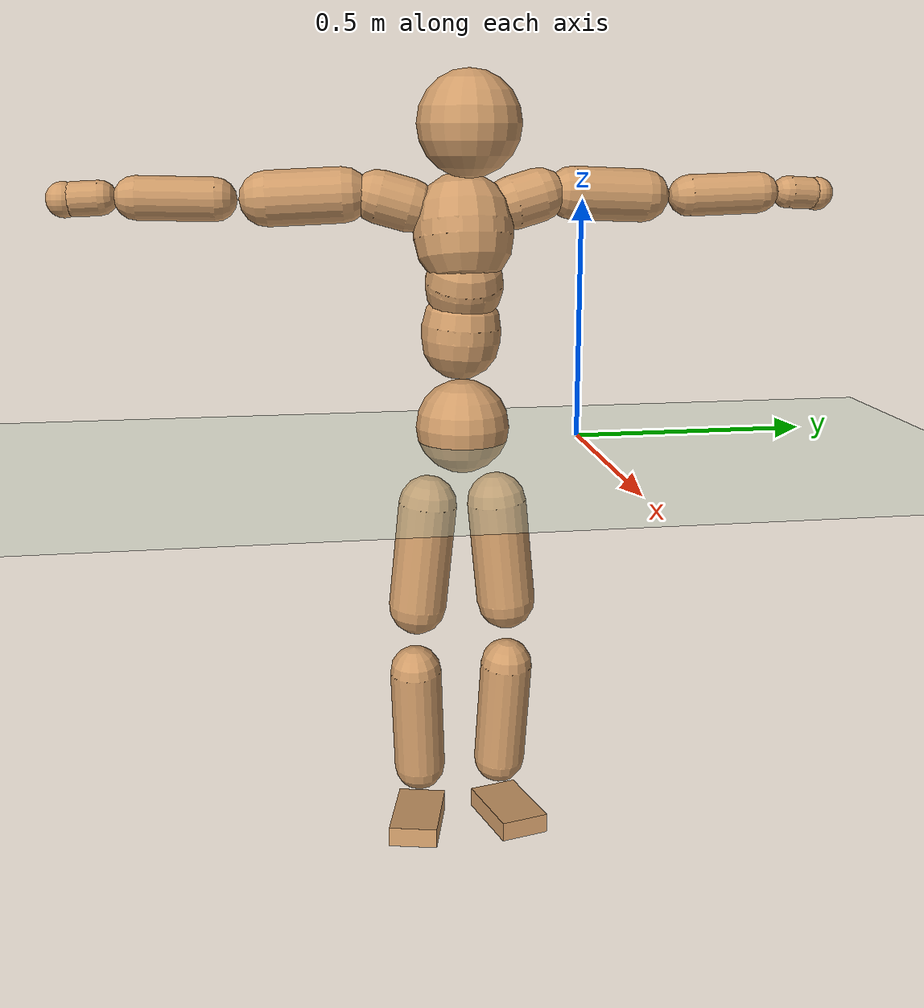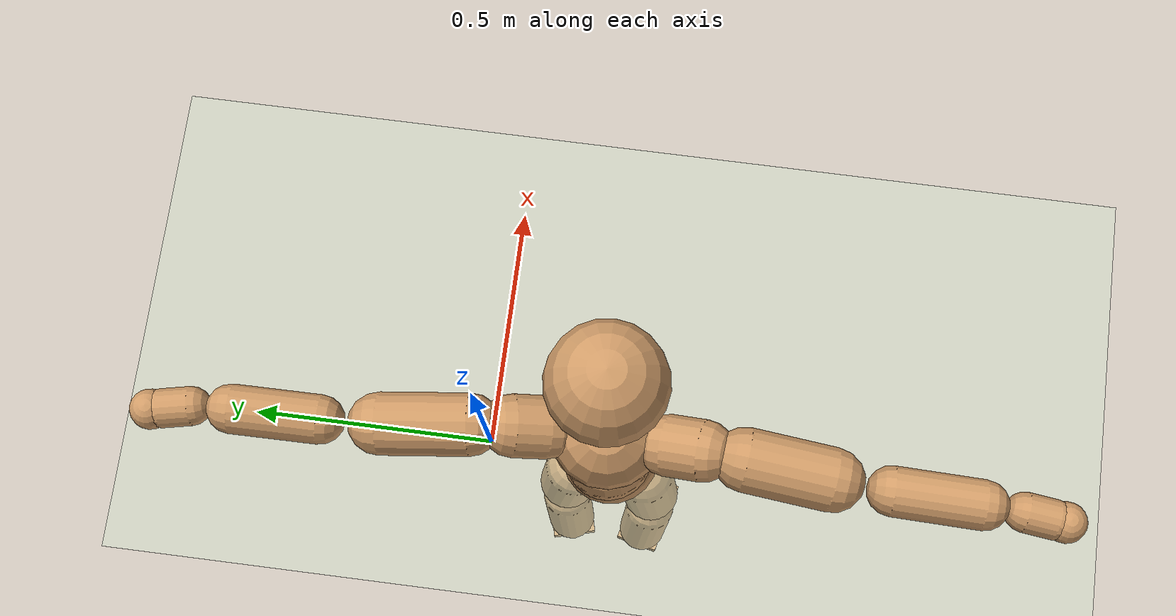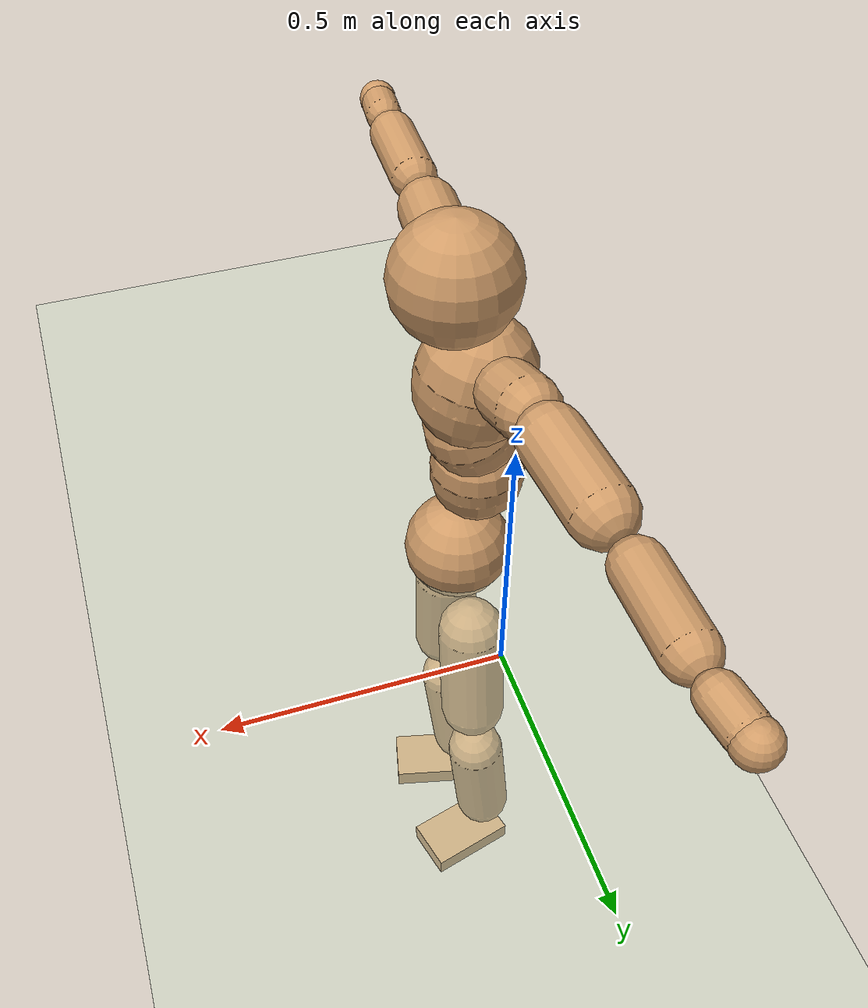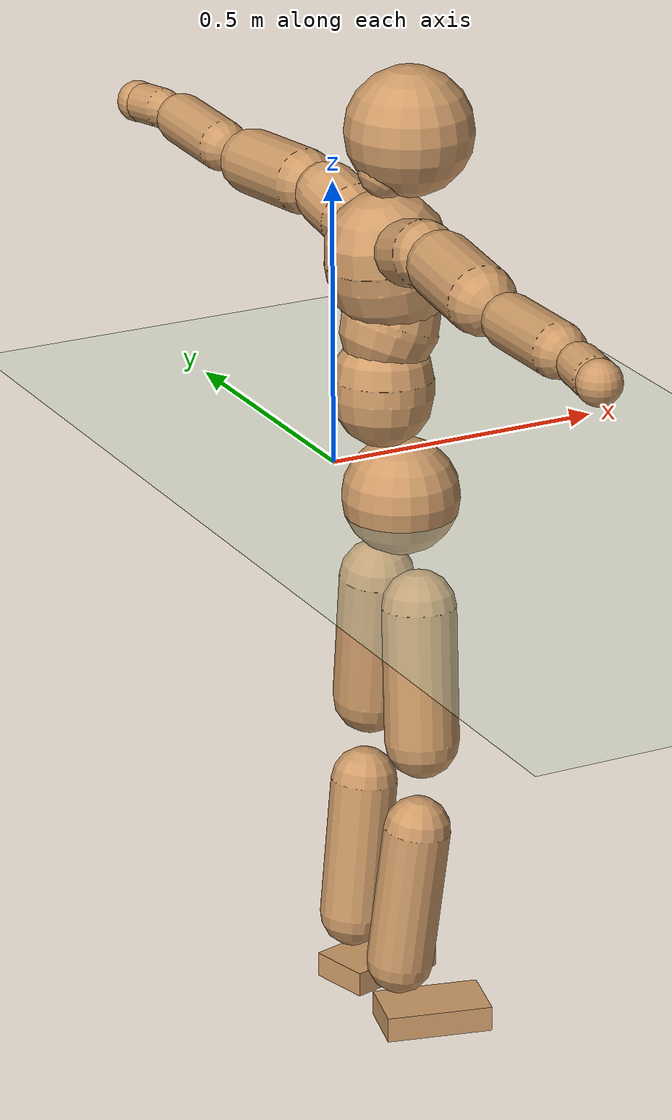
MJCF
<mujoco model="humanoid">
  <compiler coordinate="local"/>
  <default>
    <joint damping="0.0" armature="0.01" stiffness="0.0" limited="true"/>
    <geom conaffinity="1" condim="3" contype="7" margin="0.001" rgba="0.8 0.6 .4 1"/>
  </default>
  <asset>
    <texture type="skybox" builtin="gradient" rgb1=".4 .5 .6" rgb2="0 0 0" width="100" height="100"/>
    <texture builtin="flat" height="1278" mark="cross" markrgb="1 1 1" name="texgeom" random="0.01" rgb1="0.8 0.6 0.4" rgb2="0.8 0.6 0.4" type="cube" width="127"/>
    <texture builtin="checker" height="100" name="texplane" rgb1="0 0 0" rgb2="0.8 0.8 0.8" type="2d" width="100"/>
    <material name="MatPlane" reflectance="0.5" shininess="1" specular="1" texrepeat="60 60" texture="texplane"/>
    <material name="geom" texture="texgeom" texuniform="true"/>
  </asset>
  <worldbody>
    <light cutoff="100" diffuse="1 1 1" dir="-0 0 -1.3" directional="true" exponent="1" pos="0 0 1.3" specular=".1 .1 .1"/>
    <geom conaffinity="1" condim="3" name="floor" pos="0 0 0" rgba="0.8 0.9 0.8 1" size="100 100 .2" type="plane" material="MatPlane"/>
    <body name="Pelvis" pos="-0.003 -0.25 0.0282">
      <freejoint name="Pelvis"/>
      <geom type="sphere" contype="1" conaffinity="1" density="500" size="0.0997" pos="0.0000 0.0000 0.0000" name="Pelvis"/>
      <body name="L_Hip" pos="-0.0046 0.0684 -0.0957">
        <joint name="L_Hip_x" type="hinge" pos="0 0 0" axis="1 0 0" stiffness="800" damping="80" armature="0.02" range="-180.0000 180.0000"/>
        <joint name="L_Hip_y" type="hinge" pos="0 0 0" axis="0 1 0" stiffness="800" damping="80" armature="0.02" range="-180.0000 180.0000"/>
        <joint name="L_Hip_z" type="hinge" pos="0 0 0" axis="0 0 1" stiffness="800" damping="80" armature="0.02" range="-180.0000 180.0000"/>
        <geom type="capsule" contype="1" conaffinity="1" density="500" fromto="-0.0005 0.0074 -0.0760 -0.0020 0.0298 -0.3039" size="0.0638" name="L_Hip"/>
        <body name="L_Knee" pos="-0.0025 0.0372 -0.3798">
          <joint name="L_Knee_x" type="hinge" pos="0 0 0" axis="1 0 0" stiffness="800" damping="80" armature="0.02" range="-180.0000 180.0000"/>
          <joint name="L_Knee_y" type="hinge" pos="0 0 0" axis="0 1 0" stiffness="800" damping="80" armature="0.02" range="-180.0000 180.0000"/>
          <joint name="L_Knee_z" type="hinge" pos="0 0 0" axis="0 0 1" stiffness="800" damping="80" armature="0.02" range="-180.0000 180.0000"/>
          <geom type="capsule" contype="1" conaffinity="1" density="500" fromto="-0.0089 -0.0032 -0.0808 -0.0356 -0.0130 -0.3231" size="0.0572" name="L_Knee"/>
          <body name="L_Ankle" pos="-0.0445 -0.0162 -0.4039">
            <joint name="L_Ankle_x" type="hinge" pos="0 0 0" axis="1 0 0" stiffness="800" damping="80" armature="0.02" range="-180.0000 180.0000"/>
            <joint name="L_Ankle_y" type="hinge" pos="0 0 0" axis="0 1 0" stiffness="800" damping="80" armature="0.02" range="-180.0000 180.0000"/>
            <joint name="L_Ankle_z" type="hinge" pos="0 0 0" axis="0 0 1" stiffness="800" damping="80" armature="0.02" range="-180.0000 180.0000"/>
            <geom type="box" contype="1" conaffinity="1" density="500" pos="0.0625 0.0161 -0.0281" size="0.0891 0.0542 0.0215" quat="0.9921 0.0000 0.0000 0.1254" name="L_Ankle"/>
            <body name="L_Toe" pos="0.125 0.0321 -0.0561">
              <joint name="L_Toe_x" type="hinge" pos="0 0 0" axis="1 0 0" stiffness="500" damping="50" armature="0.02" range="-180.0000 180.0000"/>
              <joint name="L_Toe_y" type="hinge" pos="0 0 0" axis="0 1 0" stiffness="500" damping="50" armature="0.02" range="-180.0000 180.0000"/>
              <joint name="L_Toe_z" type="hinge" pos="0 0 0" axis="0 0 1" stiffness="500" damping="50" armature="0.02" range="-180.0000 180.0000"/>
              <geom type="box" contype="1" conaffinity="1" density="500" pos="0.0000 0.0000 0.0276" size="0.0011 0.0026 0.0011" quat="0.9914 0.0000 0.0000 0.1308" name="L_Toe"/>
            </body>
          </body>
        </body>
      </body>
      <body name="R_Hip" pos="-0.0035 -0.0673 -0.0942">
        <joint name="R_Hip_x" type="hinge" pos="0 0 0" axis="1 0 0" stiffness="800" damping="80" armature="0.02" range="-180.0000 180.0000"/>
        <joint name="R_Hip_y" type="hinge" pos="0 0 0" axis="0 1 0" stiffness="800" damping="80" armature="0.02" range="-180.0000 180.0000"/>
        <joint name="R_Hip_z" type="hinge" pos="0 0 0" axis="0 0 1" stiffness="800" damping="80" armature="0.02" range="-180.0000 180.0000"/>
        <geom type="capsule" contype="1" conaffinity="1" density="500" fromto="-0.0020 -0.0077 -0.0777 -0.0079 -0.0308 -0.3107" size="0.0627" name="R_Hip"/>
        <body name="R_Knee" pos="-0.0098 -0.0386 -0.3884">
          <joint name="R_Knee_x" type="hinge" pos="0 0 0" axis="1 0 0" stiffness="800" damping="80" armature="0.02" range="-180.0000 180.0000"/>
          <joint name="R_Knee_y" type="hinge" pos="0 0 0" axis="0 1 0" stiffness="800" damping="80" armature="0.02" range="-180.0000 180.0000"/>
          <joint name="R_Knee_z" type="hinge" pos="0 0 0" axis="0 0 1" stiffness="800" damping="80" armature="0.02" range="-180.0000 180.0000"/>
          <geom type="capsule" contype="1" conaffinity="1" density="500" fromto="-0.0088 0.0035 -0.0809 -0.0353 0.0141 -0.3237" size="0.057" name="R_Knee"/>
          <body name="R_Ankle" pos="-0.0442 0.0176 -0.4046">
            <joint name="R_Ankle_x" type="hinge" pos="0 0 0" axis="1 0 0" stiffness="800" damping="80" armature="0.02" range="-180.0000 180.0000"/>
            <joint name="R_Ankle_y" type="hinge" pos="0 0 0" axis="0 1 0" stiffness="800" damping="80" armature="0.02" range="-180.0000 180.0000"/>
            <joint name="R_Ankle_z" type="hinge" pos="0 0 0" axis="0 0 1" stiffness="800" damping="80" armature="0.02" range="-180.0000 180.0000"/>
            <geom type="box" contype="1" conaffinity="1" density="500" pos="0.0651 -0.0158 -0.0246" size="0.0911 0.0531 0.0219" quat="0.9929 0.0000 0.0000 -0.1186" name="R_Ankle"/>
            <body name="R_Toe" pos="0.1302 -0.0316 -0.0492">
              <joint name="R_Toe_x" type="hinge" pos="0 0 0" axis="1 0 0" stiffness="500" damping="50" armature="0.02" range="-180.0000 180.0000"/>
              <joint name="R_Toe_y" type="hinge" pos="0 0 0" axis="0 1 0" stiffness="500" damping="50" armature="0.02" range="-180.0000 180.0000"/>
              <joint name="R_Toe_z" type="hinge" pos="0 0 0" axis="0 0 1" stiffness="500" damping="50" armature="0.02" range="-180.0000 180.0000"/>
              <geom type="box" contype="1" conaffinity="1" density="500" pos="0.0000 0.0000 0.0250" size="0.0011 0.0026 0.0011" quat="0.9940 0.0000 0.0000 -0.1097" name="R_Toe"/>
            </body>
          </body>
        </body>
      </body>
      <body name="Torso" pos="-0.035 -0.0027 0.1192">
        <joint name="Torso_x" type="hinge" pos="0 0 0" axis="1 0 0" stiffness="1000" damping="100" armature="0.02" range="-180.0000 180.0000"/>
        <joint name="Torso_y" type="hinge" pos="0 0 0" axis="0 1 0" stiffness="1000" damping="100" armature="0.02" range="-180.0000 180.0000"/>
        <joint name="Torso_z" type="hinge" pos="0 0 0" axis="0 0 1" stiffness="1000" damping="100" armature="0.02" range="-180.0000 180.0000"/>
        <geom type="capsule" contype="1" conaffinity="1" density="500" fromto="0.0033 0.0053 0.0904 0.0022 0.0035 0.0603" size="0.0842" name="Torso"/>
        <body name="Spine" pos="0.0055 0.0088 0.1507">
          <joint name="Spine_x" type="hinge" pos="0 0 0" axis="1 0 0" stiffness="1000" damping="100" armature="0.02" range="-180.0000 180.0000"/>
          <joint name="Spine_y" type="hinge" pos="0 0 0" axis="0 1 0" stiffness="1000" damping="100" armature="0.02" range="-180.0000 180.0000"/>
          <joint name="Spine_z" type="hinge" pos="0 0 0" axis="0 0 1" stiffness="1000" damping="100" armature="0.02" range="-180.0000 180.0000"/>
          <geom type="capsule" contype="1" conaffinity="1" density="500" fromto="0.0143 0.0002 0.0363 0.0096 0.0001 0.0242" size="0.0824" name="Spine"/>
          <body name="Chest" pos="0.0239 0.0003 0.0605">
            <joint name="Chest_x" type="hinge" pos="0 0 0" axis="1 0 0" stiffness="1000" damping="100" armature="0.02" range="-180.0000 180.0000"/>
            <joint name="Chest_y" type="hinge" pos="0 0 0" axis="0 1 0" stiffness="1000" damping="100" armature="0.02" range="-180.0000 180.0000"/>
            <joint name="Chest_z" type="hinge" pos="0 0 0" axis="0 0 1" stiffness="1000" damping="100" armature="0.02" range="-180.0000 180.0000"/>
            <geom type="capsule" contype="1" conaffinity="1" density="500" fromto="-0.0190 -0.0015 0.0945 -0.0126 -0.0010 0.0630" size="0.1042" name="Chest"/>
            <body name="Neck" pos="-0.0302 -0.003 0.222">
              <joint name="Neck_x" type="hinge" pos="0 0 0" axis="1 0 0" stiffness="500" damping="50" armature="0.02" range="-180.0000 180.0000"/>
              <joint name="Neck_y" type="hinge" pos="0 0 0" axis="0 1 0" stiffness="500" damping="50" armature="0.02" range="-180.0000 180.0000"/>
              <joint name="Neck_z" type="hinge" pos="0 0 0" axis="0 0 1" stiffness="500" damping="50" armature="0.02" range="-180.0000 180.0000"/>
              <geom type="capsule" contype="1" conaffinity="1" density="500" fromto="0.0111 0.0015 0.0142 0.0444 0.0060 0.0567" size="0.0481" name="Neck"/>
              <body name="Head" pos="0.0555 0.0075 0.0709">
                <joint name="Head_x" type="hinge" pos="0 0 0" axis="1 0 0" stiffness="500" damping="50" armature="0.02" range="-180.0000 180.0000"/>
                <joint name="Head_y" type="hinge" pos="0 0 0" axis="0 1 0" stiffness="500" damping="50" armature="0.02" range="-180.0000 180.0000"/>
                <joint name="Head_z" type="hinge" pos="0 0 0" axis="0 0 1" stiffness="500" damping="50" armature="0.02" range="-180.0000 180.0000"/>
                <geom type="sphere" contype="1" conaffinity="1" density="500" size="0.1077" pos="0.0000 0.0000 0.0000" name="Head"/>
              </body>
            </body>
            <body name="L_Thorax" pos="-0.0301 0.084 0.1272">
              <joint name="L_Thorax_x" type="hinge" pos="0 0 0" axis="1 0 0" stiffness="500" damping="50" armature="0.02" range="-180.0000 180.0000"/>
              <joint name="L_Thorax_y" type="hinge" pos="0 0 0" axis="0 1 0" stiffness="500" damping="50" armature="0.02" range="-180.0000 180.0000"/>
              <joint name="L_Thorax_z" type="hinge" pos="0 0 0" axis="0 0 1" stiffness="500" damping="50" armature="0.02" range="-180.0000 180.0000"/>
              <geom type="capsule" contype="1" conaffinity="1" density="500" fromto="-0.0025 0.0197 0.0054 -0.0100 0.0789 0.0217" size="0.0561" name="L_Thorax"/>
              <body name="L_Shoulder" pos="-0.0125 0.0986 0.0271">
                <joint name="L_Shoulder_x" type="hinge" pos="0 0 0" axis="1 0 0" stiffness="500" damping="50" armature="0.02" range="-720.0000 720.0000"/>
                <joint name="L_Shoulder_y" type="hinge" pos="0 0 0" axis="0 1 0" stiffness="500" damping="50" armature="0.02" range="-720.0000 720.0000"/>
                <joint name="L_Shoulder_z" type="hinge" pos="0 0 0" axis="0 0 1" stiffness="500" damping="50" armature="0.02" range="-720.0000 720.0000"/>
                <geom type="capsule" contype="1" conaffinity="1" density="500" fromto="-0.0056 0.0527 -0.0025 -0.0223 0.2109 -0.0099" size="0.0558" name="L_Shoulder"/>
                <body name="L_Elbow" pos="-0.0279 0.2636 -0.0124">
                  <joint name="L_Elbow_x" type="hinge" pos="0 0 0" axis="1 0 0" stiffness="500" damping="50" armature="0.02" range="-720.0000 720.0000"/>
                  <joint name="L_Elbow_y" type="hinge" pos="0 0 0" axis="0 1 0" stiffness="500" damping="50" armature="0.02" range="-720.0000 720.0000"/>
                  <joint name="L_Elbow_z" type="hinge" pos="0 0 0" axis="0 0 1" stiffness="500" damping="50" armature="0.02" range="-720.0000 720.0000"/>
                  <geom type="capsule" contype="1" conaffinity="1" density="500" fromto="-0.0005 0.0516 0.0017 -0.0022 0.2065 0.0067" size="0.0442" name="L_Elbow"/>
                  <body name="L_Wrist" pos="-0.0027 0.2582 0.0084">
                    <joint name="L_Wrist_x" type="hinge" pos="0 0 0" axis="1 0 0" stiffness="300" damping="30" armature="0.02" range="-180.0000 180.0000"/>
                    <joint name="L_Wrist_y" type="hinge" pos="0 0 0" axis="0 1 0" stiffness="300" damping="30" armature="0.02" range="-180.0000 180.0000"/>
                    <joint name="L_Wrist_z" type="hinge" pos="0 0 0" axis="0 0 1" stiffness="300" damping="30" armature="0.02" range="-180.0000 180.0000"/>
                    <geom type="capsule" contype="1" conaffinity="1" density="500" fromto="-0.0035 0.0180 -0.0011 -0.0140 0.0722 -0.0046" size="0.0346" name="L_Wrist"/>
                    <body name="L_Hand" pos="-0.0175 0.0902 -0.0057">
                      <joint name="L_Hand_x" type="hinge" pos="0 0 0" axis="1 0 0" stiffness="300" damping="30" armature="0.02" range="-180.0000 180.0000"/>
                      <joint name="L_Hand_y" type="hinge" pos="0 0 0" axis="0 1 0" stiffness="300" damping="30" armature="0.02" range="-180.0000 180.0000"/>
                      <joint name="L_Hand_z" type="hinge" pos="0 0 0" axis="0 0 1" stiffness="300" damping="30" armature="0.02" range="-180.0000 180.0000"/>
                      <geom type="sphere" contype="1" conaffinity="1" density="500" size="0.0360" pos="0.0000 0.0000 0.0000" name="L_Hand"/>
                    </body>
                  </body>
                </body>
              </body>
            </body>
            <body name="R_Thorax" pos="-0.0345 -0.0886 0.1232">
              <joint name="R_Thorax_x" type="hinge" pos="0 0 0" axis="1 0 0" stiffness="500" damping="50" armature="0.02" range="-180.0000 180.0000"/>
              <joint name="R_Thorax_y" type="hinge" pos="0 0 0" axis="0 1 0" stiffness="500" damping="50" armature="0.02" range="-180.0000 180.0000"/>
              <joint name="R_Thorax_z" type="hinge" pos="0 0 0" axis="0 0 1" stiffness="500" damping="50" armature="0.02" range="-180.0000 180.0000"/>
              <geom type="capsule" contype="1" conaffinity="1" density="500" fromto="-0.0018 -0.0213 0.0061 -0.0071 -0.0852 0.0242" size="0.0553" name="R_Thorax"/>
              <body name="R_Shoulder" pos="-0.0089 -0.1065 0.0303">
                <joint name="R_Shoulder_x" type="hinge" pos="0 0 0" axis="1 0 0" stiffness="500" damping="50" armature="0.02" range="-720.0000 720.0000"/>
                <joint name="R_Shoulder_y" type="hinge" pos="0 0 0" axis="0 1 0" stiffness="500" damping="50" armature="0.02" range="-720.0000 720.0000"/>
                <joint name="R_Shoulder_z" type="hinge" pos="0 0 0" axis="0 0 1" stiffness="500" damping="50" armature="0.02" range="-720.0000 720.0000"/>
                <geom type="capsule" contype="1" conaffinity="1" density="500" fromto="-0.0049 -0.0515 -0.0024 -0.0196 -0.2062 -0.0096" size="0.0572" name="R_Shoulder"/>
                <body name="R_Elbow" pos="-0.0245 -0.2577 -0.012">
                  <joint name="R_Elbow_x" type="hinge" pos="0 0 0" axis="1 0 0" stiffness="500" damping="50" armature="0.02" range="-720.0000 720.0000"/>
                  <joint name="R_Elbow_y" type="hinge" pos="0 0 0" axis="0 1 0" stiffness="500" damping="50" armature="0.02" range="-720.0000 720.0000"/>
                  <joint name="R_Elbow_z" type="hinge" pos="0 0 0" axis="0 0 1" stiffness="500" damping="50" armature="0.02" range="-720.0000 720.0000"/>
                  <geom type="capsule" contype="1" conaffinity="1" density="500" fromto="-0.0015 -0.0526 0.0013 -0.0061 -0.2106 0.0053" size="0.0449" name="R_Elbow"/>
                  <body name="R_Wrist" pos="-0.0076 -0.2632 0.0066">
                    <joint name="R_Wrist_x" type="hinge" pos="0 0 0" axis="1 0 0" stiffness="300" damping="30" armature="0.02" range="-180.0000 180.0000"/>
                    <joint name="R_Wrist_y" type="hinge" pos="0 0 0" axis="0 1 0" stiffness="300" damping="30" armature="0.02" range="-180.0000 180.0000"/>
                    <joint name="R_Wrist_z" type="hinge" pos="0 0 0" axis="0 0 1" stiffness="300" damping="30" armature="0.02" range="-180.0000 180.0000"/>
                    <geom type="capsule" contype="1" conaffinity="1" density="500" fromto="-0.0020 -0.0181 -0.0009 -0.0081 -0.0726 -0.0035" size="0.0355" name="R_Wrist"/>
                    <body name="R_Hand" pos="-0.0101 -0.0907 -0.0043">
                      <joint name="R_Hand_x" type="hinge" pos="0 0 0" axis="1 0 0" stiffness="300" damping="30" armature="0.02" range="-180.0000 180.0000"/>
                      <joint name="R_Hand_y" type="hinge" pos="0 0 0" axis="0 1 0" stiffness="300" damping="30" armature="0.02" range="-180.0000 180.0000"/>
                      <joint name="R_Hand_z" type="hinge" pos="0 0 0" axis="0 0 1" stiffness="300" damping="30" armature="0.02" range="-180.0000 180.0000"/>
                      <geom type="sphere" contype="1" conaffinity="1" density="500" size="0.0366" pos="0.0000 0.0000 0.0000" name="R_Hand"/>
                    </body>
                  </body>
                </body>
              </body>
            </body>
          </body>
        </body>
      </body>
    </body>
  </worldbody>
  <actuator>
    <motor name="L_Hip_x" joint="L_Hip_x" gear="500"/>
    <motor name="L_Hip_y" joint="L_Hip_y" gear="500"/>
    <motor name="L_Hip_z" joint="L_Hip_z" gear="500"/>
    <motor name="L_Knee_x" joint="L_Knee_x" gear="500"/>
    <motor name="L_Knee_y" joint="L_Knee_y" gear="500"/>
    <motor name="L_Knee_z" joint="L_Knee_z" gear="500"/>
    <motor name="L_Ankle_x" joint="L_Ankle_x" gear="500"/>
    <motor name="L_Ankle_y" joint="L_Ankle_y" gear="500"/>
    <motor name="L_Ankle_z" joint="L_Ankle_z" gear="500"/>
    <motor name="L_Toe_x" joint="L_Toe_x" gear="500"/>
    <motor name="L_Toe_y" joint="L_Toe_y" gear="500"/>
    <motor name="L_Toe_z" joint="L_Toe_z" gear="500"/>
    <motor name="R_Hip_x" joint="R_Hip_x" gear="500"/>
    <motor name="R_Hip_y" joint="R_Hip_y" gear="500"/>
    <motor name="R_Hip_z" joint="R_Hip_z" gear="500"/>
    <motor name="R_Knee_x" joint="R_Knee_x" gear="500"/>
    <motor name="R_Knee_y" joint="R_Knee_y" gear="500"/>
    <motor name="R_Knee_z" joint="R_Knee_z" gear="500"/>
    <motor name="R_Ankle_x" joint="R_Ankle_x" gear="500"/>
    <motor name="R_Ankle_y" joint="R_Ankle_y" gear="500"/>
    <motor name="R_Ankle_z" joint="R_Ankle_z" gear="500"/>
    <motor name="R_Toe_x" joint="R_Toe_x" gear="500"/>
    <motor name="R_Toe_y" joint="R_Toe_y" gear="500"/>
    <motor name="R_Toe_z" joint="R_Toe_z" gear="500"/>
    <motor name="Torso_x" joint="Torso_x" gear="500"/>
    <motor name="Torso_y" joint="Torso_y" gear="500"/>
    <motor name="Torso_z" joint="Torso_z" gear="500"/>
    <motor name="Spine_x" joint="Spine_x" gear="500"/>
    <motor name="Spine_y" joint="Spine_y" gear="500"/>
    <motor name="Spine_z" joint="Spine_z" gear="500"/>
    <motor name="Chest_x" joint="Chest_x" gear="500"/>
    <motor name="Chest_y" joint="Chest_y" gear="500"/>
    <motor name="Chest_z" joint="Chest_z" gear="500"/>
    <motor name="Neck_x" joint="Neck_x" gear="500"/>
    <motor name="Neck_y" joint="Neck_y" gear="500"/>
    <motor name="Neck_z" joint="Neck_z" gear="500"/>
    <motor name="Head_x" joint="Head_x" gear="500"/>
    <motor name="Head_y" joint="Head_y" gear="500"/>
    <motor name="Head_z" joint="Head_z" gear="500"/>
    <motor name="L_Thorax_x" joint="L_Thorax_x" gear="500"/>
    <motor name="L_Thorax_y" joint="L_Thorax_y" gear="500"/>
    <motor name="L_Thorax_z" joint="L_Thorax_z" gear="500"/>
    <motor name="L_Shoulder_x" joint="L_Shoulder_x" gear="500"/>
    <motor name="L_Shoulder_y" joint="L_Shoulder_y" gear="500"/>
    <motor name="L_Shoulder_z" joint="L_Shoulder_z" gear="500"/>
    <motor name="L_Elbow_x" joint="L_Elbow_x" gear="500"/>
    <motor name="L_Elbow_y" joint="L_Elbow_y" gear="500"/>
    <motor name="L_Elbow_z" joint="L_Elbow_z" gear="500"/>
    <motor name="L_Wrist_x" joint="L_Wrist_x" gear="500"/>
    <motor name="L_Wrist_y" joint="L_Wrist_y" gear="500"/>
    <motor name="L_Wrist_z" joint="L_Wrist_z" gear="500"/>
    <motor name="L_Hand_x" joint="L_Hand_x" gear="500"/>
    <motor name="L_Hand_y" joint="L_Hand_y" gear="500"/>
    <motor name="L_Hand_z" joint="L_Hand_z" gear="500"/>
    <motor name="R_Thorax_x" joint="R_Thorax_x" gear="500"/>
    <motor name="R_Thorax_y" joint="R_Thorax_y" gear="500"/>
    <motor name="R_Thorax_z" joint="R_Thorax_z" gear="500"/>
    <motor name="R_Shoulder_x" joint="R_Shoulder_x" gear="500"/>
    <motor name="R_Shoulder_y" joint="R_Shoulder_y" gear="500"/>
    <motor name="R_Shoulder_z" joint="R_Shoulder_z" gear="500"/>
    <motor name="R_Elbow_x" joint="R_Elbow_x" gear="500"/>
    <motor name="R_Elbow_y" joint="R_Elbow_y" gear="500"/>
    <motor name="R_Elbow_z" joint="R_Elbow_z" gear="500"/>
    <motor name="R_Wrist_x" joint="R_Wrist_x" gear="500"/>
    <motor name="R_Wrist_y" joint="R_Wrist_y" gear="500"/>
    <motor name="R_Wrist_z" joint="R_Wrist_z" gear="500"/>
    <motor name="R_Hand_x" joint="R_Hand_x" gear="500"/>
    <motor name="R_Hand_y" joint="R_Hand_y" gear="500"/>
    <motor name="R_Hand_z" joint="R_Hand_z" gear="500"/>
  </actuator>
  <contact>
    <exclude body1="Torso" body2="Chest"/>
    <exclude body1="Head" body2="Chest"/>
    <exclude body1="R_Knee" body2="R_Toe"/>
    <exclude body1="R_Knee" body2="L_Ankle"/>
    <exclude body1="R_Knee" body2="L_Toe"/>
    <exclude body1="L_Knee" body2="L_Toe"/>
    <exclude body1="L_Knee" body2="R_Ankle"/>
    <exclude body1="L_Knee" body2="R_Toe"/>
    <exclude body1="L_Shoulder" body2="Chest"/>
    <exclude body1="R_Shoulder" body2="Chest"/>
  </contact>
  <sensor/>
  <size njmax="700" nconmax="700"/>
</mujoco>
